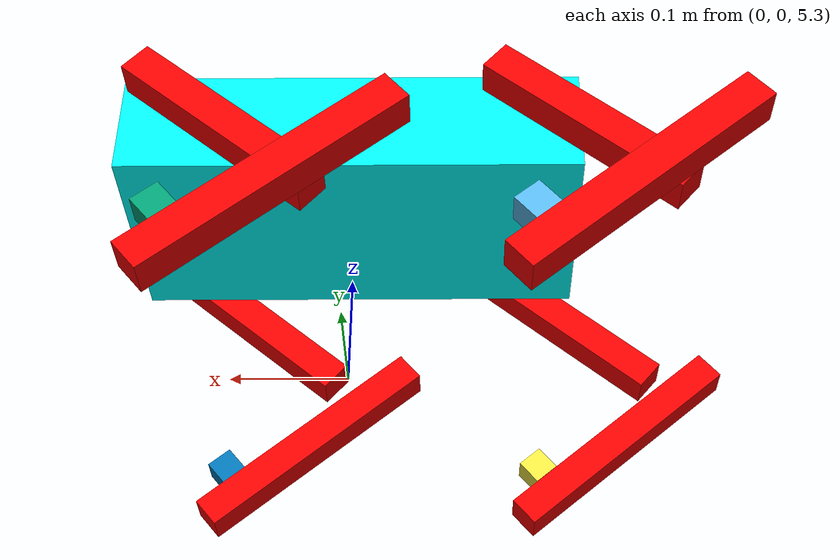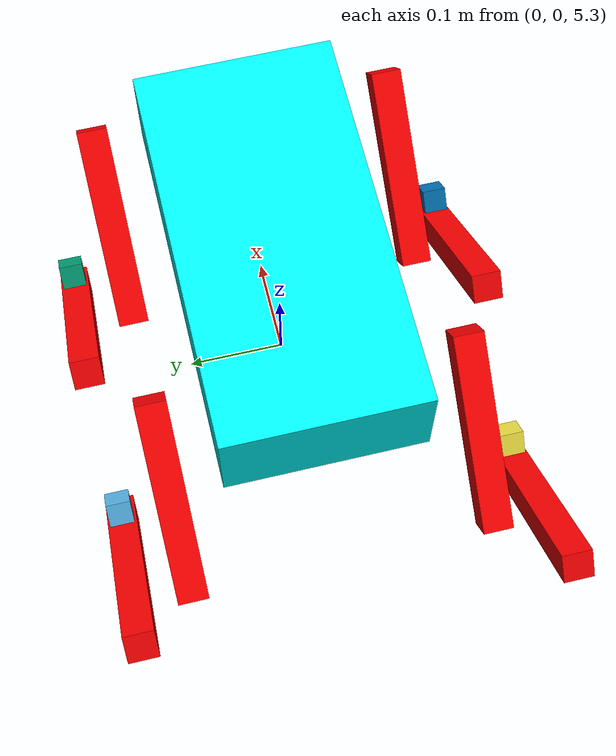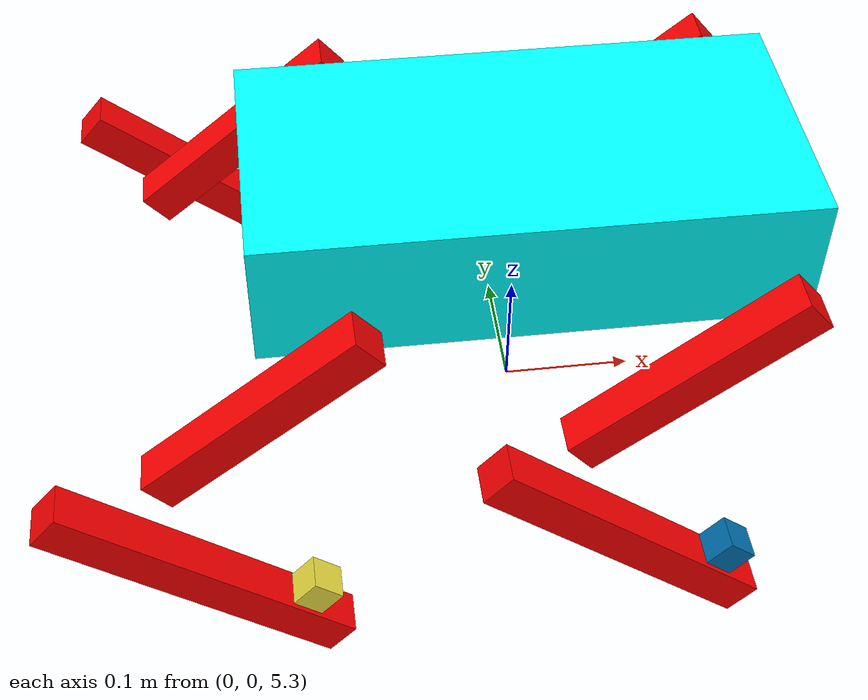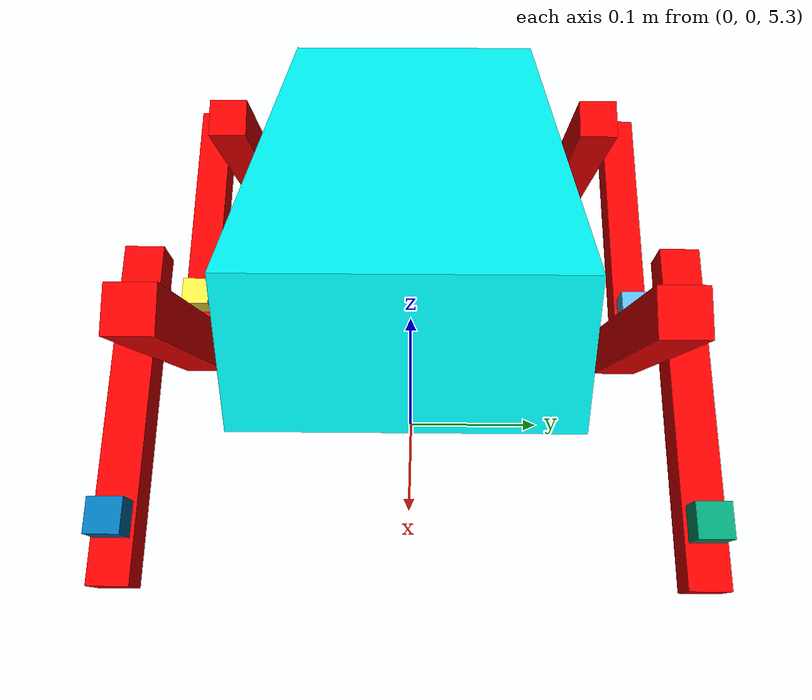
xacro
<?xml version='1.0'?>

	<robot name ="thespot_robot" xmlns:xacro="http://www.ros.org/wiki/xacro">
		<xacro:include filename="$(find myrobot)/urdf/thespot.gazebo" />

		<link name ="body">
			<visual>
      	<origin xyz="0 0 5.5" rpy="0 0 0" />
       		<geometry>
          	<box size="0.4 0.2 0.1" />
        	</geometry>
        	<material name="Cyan">
          	<color rgba="0 1.0 1.0 1.0"/>
       		</material>
      </visual>
			<inertial>
				<mass value="8"/>
					<inertia ixx="0.8" ixy="0.8" ixz="0.6" iyy="0.7" iyz="0.9" izz="0.8"/>
			</inertial>
			<collision>
	<origin xyz="0 0 5.5" rpy="0 0 0" />
       				<geometry>
          	<box size="0.4 0.2 0.1" />
        	</geometry>
			</collision>
		</link>

		<gazebo reference="body">
        <kp>1000.0</kp>
        <kd>1000.0</kd>
        <mu1>0.5</mu1>
        <mu2>0.5</mu2>
        <material>Gazebo/Red</material>
    </gazebo>

			<xacro:macro name="leg" params="prefix reflect_big_link reflect_big_joint reflect_small_link  reflect_small_joint">

		<link name="${prefix}_big_leg">
			<visual>
				<origin xyz="${reflect_big_link}" rpy="0 -0.7 0" />
       		<geometry>
          	<box size="0.2 0.03 0.03" />
        	</geometry>
        		<material name="red" >
          	<color rgba="1.00 0 0 1.0"/>
       			</material>
      </visual>
			<inertial>
				<mass value="0.2"/>
					<inertia ixx="0.8" ixy="0.8" ixz="0.6" iyy="0.7" iyz="0.9" izz="0.8"/>
			</inertial>
			<collision>
			<origin xyz="${reflect_big_link}" rpy="0 -0.7 0" />
				<geometry>
          	<box size="0.2 0.03 0.03" />
        	</geometry>
			</collision>
		</link>

		<gazebo reference="${prefix}_big_leg">
        <kp>1000.0</kp>
        <kd>1000.0</kd>
        <mu1>50</mu1>
        <mu2>100</mu2>
        <material>Gazebo/Blue</material>
    </gazebo>

		<joint name="body_to_${prefix}_big_leg" type="revolute">
       <origin xyz="${reflect_big_joint}" rpy="0 0 0"/>
        <parent link="body"/>
        <child link="${prefix}_big_leg"/>
				<axis xyz = "0 1 0"/>
        <limit effort="50" velocity="1.0" lower="-2.2" upper="0.7" />
		<joint_properties damping="1.0" friction="50.0" />
    </joint>

		<link name="${prefix}_small_leg">
			<visual>
				<origin xyz="${reflect_small_link}" rpy="0 0.7 0" />
       		<geometry>
          	<box size="0.25 0.03 0.03" />

			<origin xyz="${reflect_small_link}" rpy="0 0.7 0" />
        	</geometry>
        		<material name="red" >
          	<color rgba="1.00 0 0 1.0"/>
       			</material>
      </visual>
				<inertial>
					<mass value="0.2"/>
					<inertia ixx="0.8" ixy="0.8" ixz="0.6" iyy="0.7" iyz="0.9" izz="0.8"/>
				</inertial>
			<collision>
			<origin xyz="${reflect_big_joint}" rpy="0 0 0"/>
				<geometry>
          	<box size="0.25 0.03 0.03" />
        	</geometry>
			</collision>
		</link>

		<gazebo reference="${prefix}_small_leg">
                <kp>1000.0</kp>
        		<kd>1000.0</kd>
        		<mu1>5000.0</mu1>
        		<mu2>100000.0</mu2>
                <fdir1>1 0 0</fdir1>
                <maxContacts>1</maxContacts>
                <minDepth>0.005</minDepth>
                <gravity>true</gravity>
        <material>Gazebo/Black</material>
        </gazebo>

		<joint name="${prefix}_big_leg_to_${prefix}_small_leg" type="revolute">
       <origin xyz="${reflect_small_joint}" rpy="0 0 0"/>
        <parent link="${prefix}_big_leg"/>
        <child link="${prefix}_small_leg"/>
				<axis xyz = "0 1 0"/>
        <limit effort="30" velocity="1.0" lower="-0.7" upper="0.7" />
		<joint_properties damping="1.0" friction="50.0" />
    </joint>

			<!-- A bunch of stuff cut -->
    </xacro:macro>
		<xacro:leg prefix="left_back" reflect_big_link="-0.05 -0.05 0" reflect_big_joint="-0.15 0.2 5.45" reflect_small_link="0.05 -0.05 0" reflect_small_joint="-0.13 0.055 -0.1" />
	<xacro:leg prefix="left_forward" reflect_big_link="-0.05 -0.05 0" reflect_big_joint="0.15 0.2 5.45" reflect_small_link="0.05 -0.05 0" reflect_small_joint="-0.15 0.055 -0.1" />
	<xacro:leg prefix="right_back" reflect_big_link="-0.05 -0.05 0" reflect_big_joint="-0.15 -0.1 5.45" reflect_small_link="0.05 -0.05 0" reflect_small_joint="-0.15 -0.055 -0.1" />
	<xacro:leg prefix="right_forward" reflect_big_link="-0.05 -0.05 0" reflect_big_joint="0.15 -0.1 5.45" reflect_small_link="0.05 -0.05 0" reflect_small_joint="-0.15 -0.055 -0.1" />
	<gazebo>
  		<plugin name="gazebo_ros_control" filename="libgazebo_ros_control.so">
    			<robotNamespace>/thespot_robot</robotNamespace>
  		</plugin>
	</gazebo>
	<xacro:macro name="leg" params="prefix reflect_big_link reflect_big_joint reflect_small_link  reflect_small_joint">

		<transmission name="${prefix}_big">
    		<type>transmission_interface/SimpleTransmission</type>
    		<joint name="body_to_${prefix}_big_leg">
      			<hardwareInterface>hardware_interface/EffortJointInterface</hardwareInterface>
    		</joint>
    		<actuator name="${prefix}_big">
			<hardwareInterface>hardware_interface/EffortJointInterface</hardwareInterface>
      			<mechanicalReduction>1</mechanicalReduction>
    		</actuator>
  		</transmission>

		<transmission name="${prefix}_small">
    		<type>transmission_interface/SimpleTransmission</type>
    		<joint name="${prefix}_big_leg_to_${prefix}_small_leg">
      			<hardwareInterface>hardware_interface/EffortJointInterface</hardwareInterface>
    		</joint>
		<actuator name="${prefix}_small">
			<hardwareInterface>hardware_interface/EffortJointInterface</hardwareInterface>
      			<mechanicalReduction>1</mechanicalReduction>
    		</actuator>
  		</transmission>

	 </xacro:macro>
		<xacro:leg prefix="left_back" reflect_big_link="-0.05 -0.05 1" reflect_big_joint="-0.15 0.2 10.45" reflect_small_link="0.05 -0.05 0.15" reflect_small_joint="-0.13 0.055 2" />
	<xacro:leg prefix="left_forward" reflect_big_link="-0.05 -0.05 1" reflect_big_joint="0.15 0.2 10.45" reflect_small_link="0.05 -0.05 0.15" reflect_small_joint="-0.15 0.055 2" />
	<xacro:leg prefix="right_back" reflect_big_link="-0.05 -0.05 1" reflect_big_joint="-0.15 -0.1 10.45" reflect_small_link="0.05 -0.05 0.15" reflect_small_joint="-0.15 -0.055 2" />
	<xacro:leg prefix="right_forward" reflect_big_link="-0.05 -0.05 1" reflect_big_joint="0.15 -0.1 10.45" reflect_small_link="0.05 -0.05 0.15" reflect_small_joint="-0.15 -0.055 2" />
	<!--Camera-->
  		<link name="camera_link">
    			<collision>
      				<origin xyz="0 0 0" rpy="0 0.7 0"/>
      				<geometry>
    					<box size="0.025 0.025 0.025"/>
     		 		</geometry>
    			</collision>

   			<visual>
      				<origin xyz="0 0 0" rpy="0 0.7 0"/>
      				<geometry>
    					<box size="0.025 0.025 0.025"/>
      				</geometry>
      				<material name="0 1 0 1"/>
    			</visual>

    			<inertial>
      				<mass value="1e-5" />
      				<origin xyz="0 0 0" rpy="0 0.7 0"/>
      				<inertia ixx="1e-6" ixy="0" ixz="0" iyy="1e-6" iyz="0" izz="1e-6" />
    				</inertial>
  		</link>

		<joint name="camera_joint" type="fixed">
    			<axis xyz="0 1 0" />
    			<origin xyz="0.13 -0.05 -0.03" rpy="0 0 0"/>
    			<parent link="left_back_small_leg"/>
    			<child link="camera_link"/>
  		</joint>

		  <link name="camera_link1">
    			<collision>
      				<origin xyz="0 0 0" rpy="0 0.7 0"/>
      				<geometry>
    					<box size="0.025 0.025 0.025"/>
     		 		</geometry>
    			</collision>

   			<visual>
      				<origin xyz="0 0 0" rpy="0 0.7 0"/>
      				<geometry>
    					<box size="0.025 0.025 0.025"/>
      				</geometry>
      				<material name="0 1 0 1"/>
    			</visual>

    			<inertial>
      				<mass value="1e-5" />
      				<origin xyz="0 0 0" rpy="0 0.7 0"/>
      				<inertia ixx="1e-6" ixy="0" ixz="0" iyy="1e-6" iyz="0" izz="1e-6" />
    				</inertial>
  		</link>

		<joint name="camera_joint1" type="fixed">
    			<axis xyz="0 1 0" />
    			<origin xyz="0.13 -0.05 -0.03" rpy="0 0 0"/>
    			<parent link="left_forward_small_leg"/>
    			<child link="camera_link1"/>
  		</joint>

		  <link name="camera_link2">
    			<collision>
      				<origin xyz="0 0 0" rpy="0 0.7 0"/>
      				<geometry>
    					<box size="0.025 0.025 0.025"/>
     		 		</geometry>
    			</collision>

   			<visual>
      				<origin xyz="0 0 0" rpy="0 0.7 0"/>
      				<geometry>
    					<box size="0.025 0.025 0.025"/>
      				</geometry>
      				<material name="0 1 0 1"/>
    			</visual>

    			<inertial>
      				<mass value="1e-5" />
      				<origin xyz="0 0 0" rpy="0 0.7 0"/>
      				<inertia ixx="1e-6" ixy="0" ixz="0" iyy="1e-6" iyz="0" izz="1e-6" />
    				</inertial>
  		</link>

		<joint name="camera_joint2" type="fixed">
    			<axis xyz="0 1 0" />
    			<origin xyz="0.13 -0.05 -0.03" rpy="0 0 0"/>
    			<parent link="right_back_small_leg"/>
    			<child link="camera_link2"/>
  		</joint>

		  <link name="camera_link3">
    			<collision>
      				<origin xyz="0 0 0" rpy="0 0.7 0"/>
      				<geometry>
    					<box size="0.025 0.025 0.025"/>
     		 		</geometry>
    			</collision>

   			<visual>
      				<origin xyz="0 0 0" rpy="0 0.7 0"/>
      				<geometry>
    					<box size="0.025 0.025 0.025"/>
      				</geometry>
      				<material name="0 1 0 1"/>
    			</visual>

    			<inertial>
      				<mass value="1e-5" />
      				<origin xyz="0 0 0" rpy="0 0.7 0"/>
      				<inertia ixx="1e-6" ixy="0" ixz="0" iyy="1e-6" iyz="0" izz="1e-6" />
    				</inertial>
  		</link>

		<joint name="camera_joint3" type="fixed">
    			<axis xyz="0 1 0" />
    			<origin xyz="0.13 -0.05 -0.03" rpy="0 0 0"/>
    			<parent link="right_forward_small_leg"/>
    			<child link="camera_link3"/>
  		</joint>

<!--addition-->

</robot>
